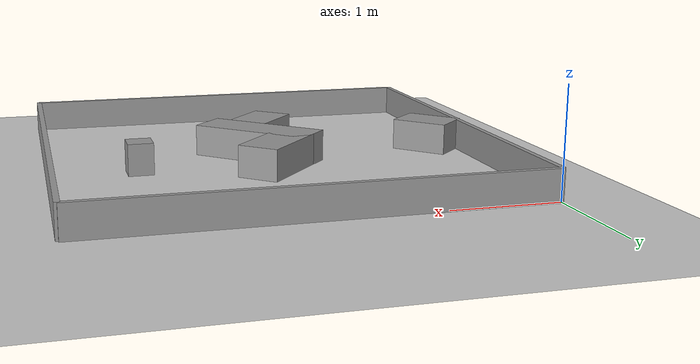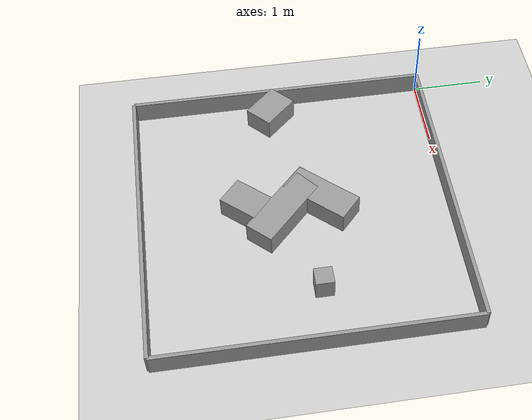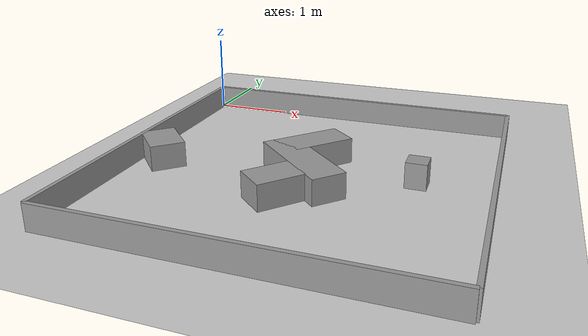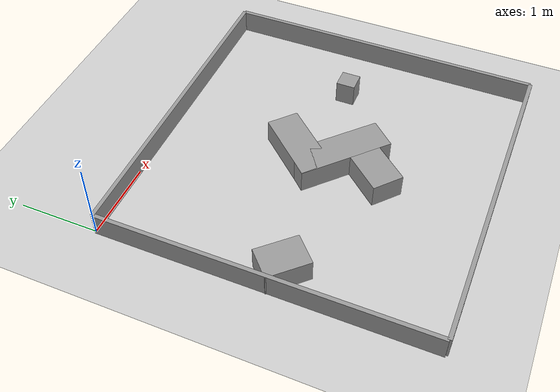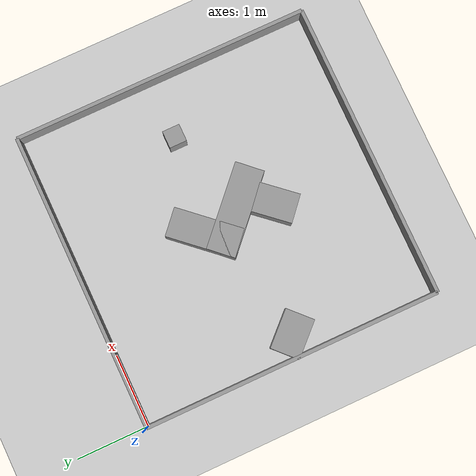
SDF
<sdf version='1.6'>
  <world name='default'>
    <light name='sun' type='directional'>
      <cast_shadows>1</cast_shadows>
      <pose frame=''>0 0 10 0 -0 0</pose>
      <diffuse>0.8 0.8 0.8 1</diffuse>
      <specular>0.1 0.1 0.1 1</specular>
      <attenuation>
        <range>1000</range>
        <constant>0.9</constant>
        <linear>0.01</linear>
        <quadratic>0.001</quadratic>
      </attenuation>
      <direction>-0.5 0.5 -1</direction>
    </light>
    <model name='ground_plane'>
      <static>1</static>
      <link name='link'>
        <collision name='collision'>
          <geometry>
            <plane>
              <normal>0 0 1</normal>
              <size>100 100</size>
            </plane>
          </geometry>
          <surface>
            <friction>
              <ode>
                <mu>100</mu>
                <mu2>50</mu2>
              </ode>
              <torsional>
                <ode/>
              </torsional>
            </friction>
            <contact>
              <ode/>
            </contact>
            <bounce/>
          </surface>
          <max_contacts>10</max_contacts>
        </collision>
        <visual name='visual'>
          <cast_shadows>0</cast_shadows>
          <geometry>
            <plane>
              <normal>0 0 1</normal>
              <size>100 100</size>
            </plane>
          </geometry>
          <material>
            <script>
              <uri>file://media/materials/scripts/gazebo.material</uri>
              <name>Gazebo/Grey</name>
            </script>
          </material>
        </visual>
        <self_collide>0</self_collide>
        <kinematic>0</kinematic>
        <gravity>1</gravity>
        <enable_wind>0</enable_wind>
      </link>
    </model>
    <gravity>0 0 -9.8</gravity>
    <magnetic_field>6e-06 2.3e-05 -4.2e-05</magnetic_field>
    <atmosphere type='adiabatic'/>
    <physics name='default_physics' default='0' type='ode'>
      <max_step_size>0.001</max_step_size>
      <real_time_factor>1</real_time_factor>
      <real_time_update_rate>1000.0</real_time_update_rate>
    </physics>
    <scene>
      <ambient>0.4 0.4 0.4 1</ambient>
      <background>0.7 0.7 0.7 1</background>
      <shadows>1</shadows>
    </scene>
    <spherical_coordinates>
      <surface_model>EARTH_WGS84</surface_model>
      <latitude_deg>0</latitude_deg>
      <longitude_deg>0</longitude_deg>
      <elevation>0</elevation>
      <heading_deg>0</heading_deg>
    </spherical_coordinates>
    <model name='Untitled'>
      <pose frame=''>2.05 -2.05 0 0 -0 0</pose>
      <link name='Wall_0'>
        <collision name='Wall_0_Collision'>
          <geometry>
            <box>
              <size>4.1 0.05 0.3</size>
            </box>
          </geometry>
          <pose frame=''>0 0 0.15 0 -0 0</pose>
          <max_contacts>10</max_contacts>
          <surface>
            <contact>
              <ode/>
            </contact>
            <bounce/>
            <friction>
              <torsional>
                <ode/>
              </torsional>
              <ode/>
            </friction>
          </surface>
        </collision>
        <visual name='Wall_0_Visual'>
          <pose frame=''>0 0 0.15 0 -0 0</pose>
          <geometry>
            <box>
              <size>4.1 0.05 0.3</size>
            </box>
          </geometry>
          <material>
            <script>
              <uri>file://media/materials/scripts/gazebo.material</uri>
              <name>Gazebo/Grey</name>
            </script>
            <ambient>1 1 1 1</ambient>
          </material>
        </visual>
        <pose frame=''>0 2.05 0 0 -0 0</pose>
        <self_collide>0</self_collide>
        <kinematic>0</kinematic>
        <gravity>1</gravity>
        <enable_wind>0</enable_wind>
      </link>
      <link name='Wall_10'>
        <collision name='Wall_10_Collision'>
          <geometry>
            <box>
              <size>1.2 0.4 0.3</size>
            </box>
          </geometry>
          <pose frame=''>0 0 0.15 0 -0 0</pose>
          <max_contacts>10</max_contacts>
          <surface>
            <contact>
              <ode/>
            </contact>
            <bounce/>
            <friction>
              <torsional>
                <ode/>
              </torsional>
              <ode/>
            </friction>
          </surface>
        </collision>
        <visual name='Wall_10_Visual'>
          <pose frame=''>0 0 0.15 0 -0 0</pose>
          <geometry>
            <box>
              <size>1.2 0.4 0.3</size>
            </box>
          </geometry>
          <material>
            <script>
              <uri>file://media/materials/scripts/gazebo.material</uri>
              <name>Gazebo/Grey</name>
            </script>
            <ambient>1 1 1 1</ambient>
          </material>
        </visual>
        <pose frame=''>0.009164 -0.143083 0 0 0 -0.751285</pose>
        <self_collide>0</self_collide>
        <kinematic>0</kinematic>
        <gravity>1</gravity>
        <enable_wind>0</enable_wind>
      </link>
      <link name='Wall_14'>
        <collision name='Wall_14_Collision'>
          <geometry>
            <box>
              <size>0.55 0.4 0.3</size>
            </box>
          </geometry>
          <pose frame=''>0 0 0.15 0 -0 0</pose>
          <max_contacts>10</max_contacts>
          <surface>
            <contact>
              <ode/>
            </contact>
            <bounce/>
            <friction>
              <torsional>
                <ode/>
              </torsional>
              <ode/>
            </friction>
          </surface>
        </collision>
        <visual name='Wall_14_Visual'>
          <pose frame=''>0 0 0.15 0 -0 0</pose>
          <geometry>
            <box>
              <size>0.55 0.4 0.3</size>
            </box>
          </geometry>
          <material>
            <script>
              <uri>file://media/materials/scripts/gazebo.material</uri>
              <name>Gazebo/Grey</name>
            </script>
            <ambient>1 1 1 1</ambient>
          </material>
        </visual>
        <pose frame=''>-0.127676 -0.656614 0 0 -0 0.850544</pose>
        <self_collide>0</self_collide>
        <kinematic>0</kinematic>
        <gravity>1</gravity>
        <enable_wind>0</enable_wind>
      </link>
      <link name='Wall_16'>
        <collision name='Wall_16_Collision'>
          <geometry>
            <box>
              <size>0.55 0.4 0.3</size>
            </box>
          </geometry>
          <pose frame=''>0 0 0.15 0 -0 0</pose>
          <max_contacts>10</max_contacts>
          <surface>
            <contact>
              <ode/>
            </contact>
            <bounce/>
            <friction>
              <torsional>
                <ode/>
              </torsional>
              <ode/>
            </friction>
          </surface>
        </collision>
        <visual name='Wall_16_Visual'>
          <pose frame=''>0 0 0.15 0 -0 0</pose>
          <geometry>
            <box>
              <size>0.55 0.4 0.3</size>
            </box>
          </geometry>
          <material>
            <script>
              <uri>file://media/materials/scripts/gazebo.material</uri>
              <name>Gazebo/Grey</name>
            </script>
            <ambient>1 1 1 1</ambient>
          </material>
        </visual>
        <pose frame=''>-1.75 -0.133 0 0 0 -0.807213</pose>
        <self_collide>0</self_collide>
        <kinematic>0</kinematic>
        <gravity>1</gravity>
        <enable_wind>0</enable_wind>
      </link>
      <link name='Wall_19'>
        <collision name='Wall_19_Collision'>
          <geometry>
            <box>
              <size>0.24 0.24 0.3</size>
            </box>
          </geometry>
          <pose frame=''>0 0 0.15 0 -0 0</pose>
          <max_contacts>10</max_contacts>
          <surface>
            <contact>
              <ode/>
            </contact>
            <bounce/>
            <friction>
              <torsional>
                <ode/>
              </torsional>
              <ode/>
            </friction>
          </surface>
        </collision>
        <visual name='Wall_19_Visual'>
          <pose frame=''>0 0 0.15 0 -0 0</pose>
          <geometry>
            <box>
              <size>0.24 0.24 0.3</size>
            </box>
          </geometry>
          <material>
            <script>
              <uri>file://media/materials/scripts/gazebo.material</uri>
              <name>Gazebo/Grey</name>
            </script>
            <ambient>1 1 1 1</ambient>
          </material>
        </visual>
        <pose frame=''>1.22 0.173 0 0 -0 0</pose>
        <self_collide>0</self_collide>
        <kinematic>0</kinematic>
        <gravity>1</gravity>
        <enable_wind>0</enable_wind>
      </link>
      <link name='Wall_2'>
        <collision name='Wall_2_Collision'>
          <geometry>
            <box>
              <size>4.1 0.05 0.3</size>
            </box>
          </geometry>
          <pose frame=''>0 0 0.15 0 -0 0</pose>
          <max_contacts>10</max_contacts>
          <surface>
            <contact>
              <ode/>
            </contact>
            <bounce/>
            <friction>
              <torsional>
                <ode/>
              </torsional>
              <ode/>
            </friction>
          </surface>
        </collision>
        <visual name='Wall_2_Visual'>
          <pose frame=''>0 0 0.15 0 -0 0</pose>
          <geometry>
            <box>
              <size>4.1 0.05 0.3</size>
            </box>
          </geometry>
          <material>
            <script>
              <uri>file://media/materials/scripts/gazebo.material</uri>
              <name>Gazebo/Grey</name>
            </script>
            <ambient>1 1 1 1</ambient>
          </material>
        </visual>
        <pose frame=''>2.05 0 0 0 0 -1.5708</pose>
        <self_collide>0</self_collide>
        <kinematic>0</kinematic>
        <gravity>1</gravity>
        <enable_wind>0</enable_wind>
      </link>
      <link name='Wall_4'>
        <collision name='Wall_4_Collision'>
          <geometry>
            <box>
              <size>4.1 0.05 0.3</size>
            </box>
          </geometry>
          <pose frame=''>0 0 0.15 0 -0 0</pose>
          <max_contacts>10</max_contacts>
          <surface>
            <contact>
              <ode/>
            </contact>
            <bounce/>
            <friction>
              <torsional>
                <ode/>
              </torsional>
              <ode/>
            </friction>
          </surface>
        </collision>
        <visual name='Wall_4_Visual'>
          <pose frame=''>0 0 0.15 0 -0 0</pose>
          <geometry>
            <box>
              <size>4.1 0.05 0.3</size>
            </box>
          </geometry>
          <material>
            <script>
              <uri>file://media/materials/scripts/gazebo.material</uri>
              <name>Gazebo/Grey</name>
            </script>
            <ambient>1 1 1 1</ambient>
          </material>
        </visual>
        <pose frame=''>0.0 -2.05 0 0 -0 3.14159</pose>
        <self_collide>0</self_collide>
        <kinematic>0</kinematic>
        <gravity>1</gravity>
        <enable_wind>0</enable_wind>
      </link>
      <link name='Wall_6'>
        <collision name='Wall_6_Collision'>
          <geometry>
            <box>
              <size>4.1 0.05 0.3</size>
            </box>
          </geometry>
          <pose frame=''>0 0 0.15 0 -0 0</pose>
          <max_contacts>10</max_contacts>
          <surface>
            <contact>
              <ode/>
            </contact>
            <bounce/>
            <friction>
              <torsional>
                <ode/>
              </torsional>
              <ode/>
            </friction>
          </surface>
        </collision>
        <visual name='Wall_6_Visual'>
          <pose frame=''>0 0 0.15 0 -0 0</pose>
          <geometry>
            <box>
              <size>4.1 0.05 0.3</size>
            </box>
          </geometry>
          <material>
            <script>
              <uri>file://media/materials/scripts/gazebo.material</uri>
              <name>Gazebo/Grey</name>
            </script>
            <ambient>1 1 1 1</ambient>
          </material>
        </visual>
        <pose frame=''>-2.05 0 0 0 0 -1.5708</pose>
        <self_collide>0</self_collide>
        <kinematic>0</kinematic>
        <gravity>1</gravity>
        <enable_wind>0</enable_wind>
      </link>
      <link name='Wall_8'>
        <collision name='Wall_8_Collision'>
          <geometry>
            <box>
              <size>0.95 0.4 0.3</size>
            </box>
          </geometry>
          <pose frame=''>0 0 0.15 0 -0 0</pose>
          <max_contacts>10</max_contacts>
          <surface>
            <contact>
              <ode/>
            </contact>
            <bounce/>
            <friction>
              <torsional>
                <ode/>
              </torsional>
              <ode/>
            </friction>
          </surface>
        </collision>
        <visual name='Wall_8_Visual'>
          <pose frame=''>0 0 0.15 0 -0 0</pose>
          <geometry>
            <box>
              <size>0.95 0.4 0.3</size>
            </box>
          </geometry>
          <material>
            <script>
              <uri>file://media/materials/scripts/gazebo.material</uri>
              <name>Gazebo/Grey</name>
            </script>
            <ambient>1 1 1 1</ambient>
          </material>
        </visual>
        <pose frame=''>-0.092704 0.341856 0 0 0 -2.30262</pose>
        <self_collide>0</self_collide>
        <kinematic>0</kinematic>
        <gravity>1</gravity>
        <enable_wind>0</enable_wind>
      </link>
      <static>1</static>
    </model>

    <gui fullscreen='0'>
      <camera name='user_camera'>
        <pose frame=''>2.00874 -12.0819 5.61075 -0 0.258295 2.1043</pose>
        <view_controller>orbit</view_controller>
        <projection_type>perspective</projection_type>
      </camera>
    </gui>
    <audio>
      <device>default</device>
    </audio>
    <wind/>
  </world>
</sdf>
